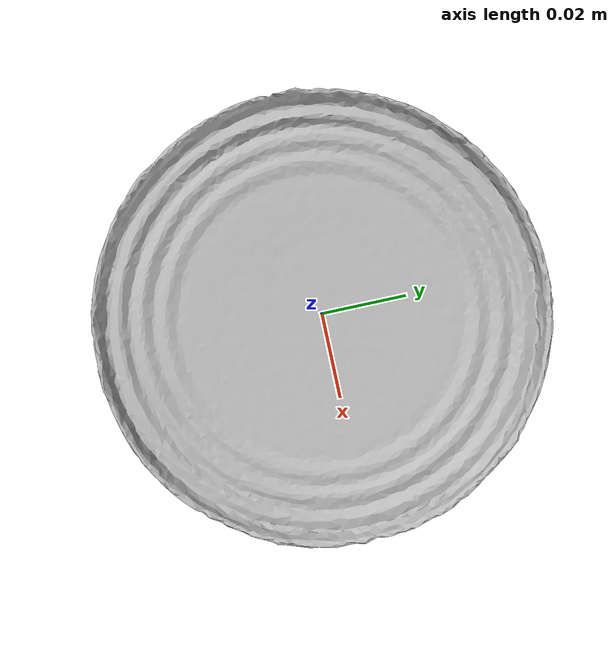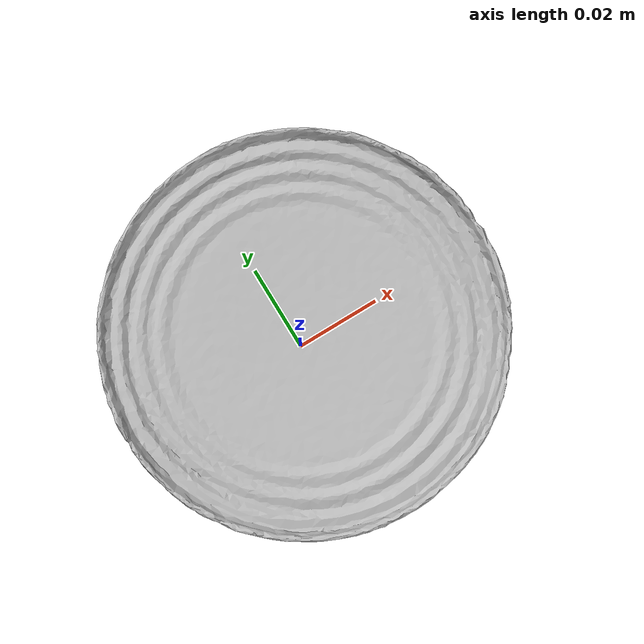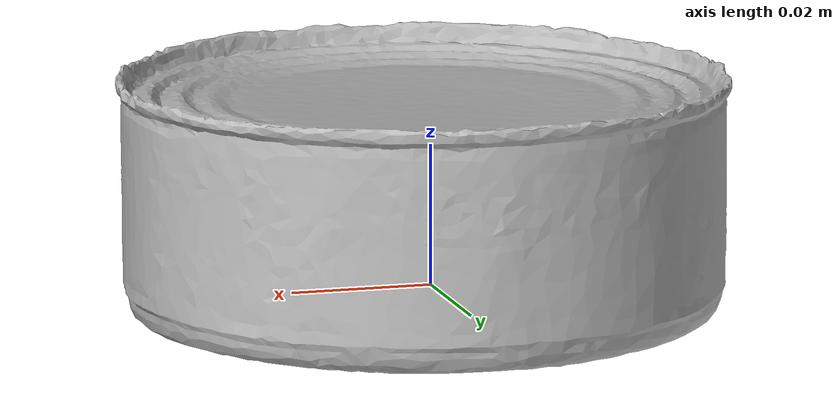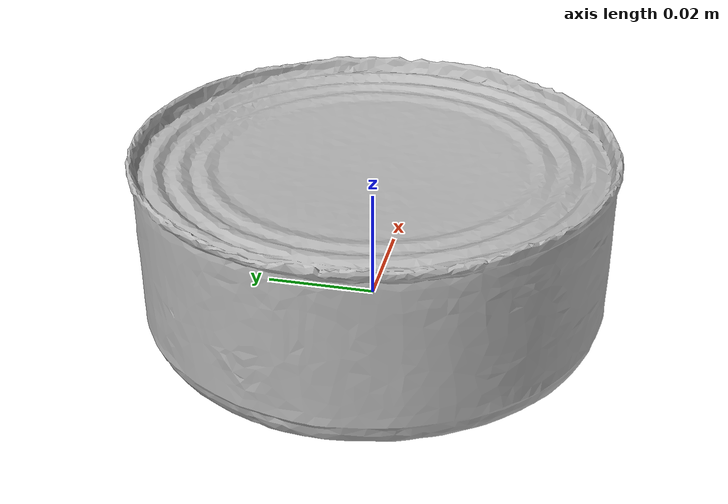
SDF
<?xml version="1.0"?>
<sdf version="1.6">
  <model name="tuna_fish_can">
    <link name="link">
      <inertial>
        <mass>0.171</mass>
      </inertial>
      <collision name="collision">
        <pose>0 0 0.0165 0 0 0</pose>
        <geometry>
          <cylinder>
            <radius>0.0425</radius>
            <length>0.033</length>
          </cylinder>
        </geometry>
      </collision>
      <visual name="visual">
        <pose>0.027 0.022 0 0 0 0</pose>
        <geometry>
          <mesh>
            <uri>model://tuna_fish_can/meshes/textured.dae</uri>
          </mesh>
        </geometry>
      </visual>
    </link>
  </model>
</sdf>
